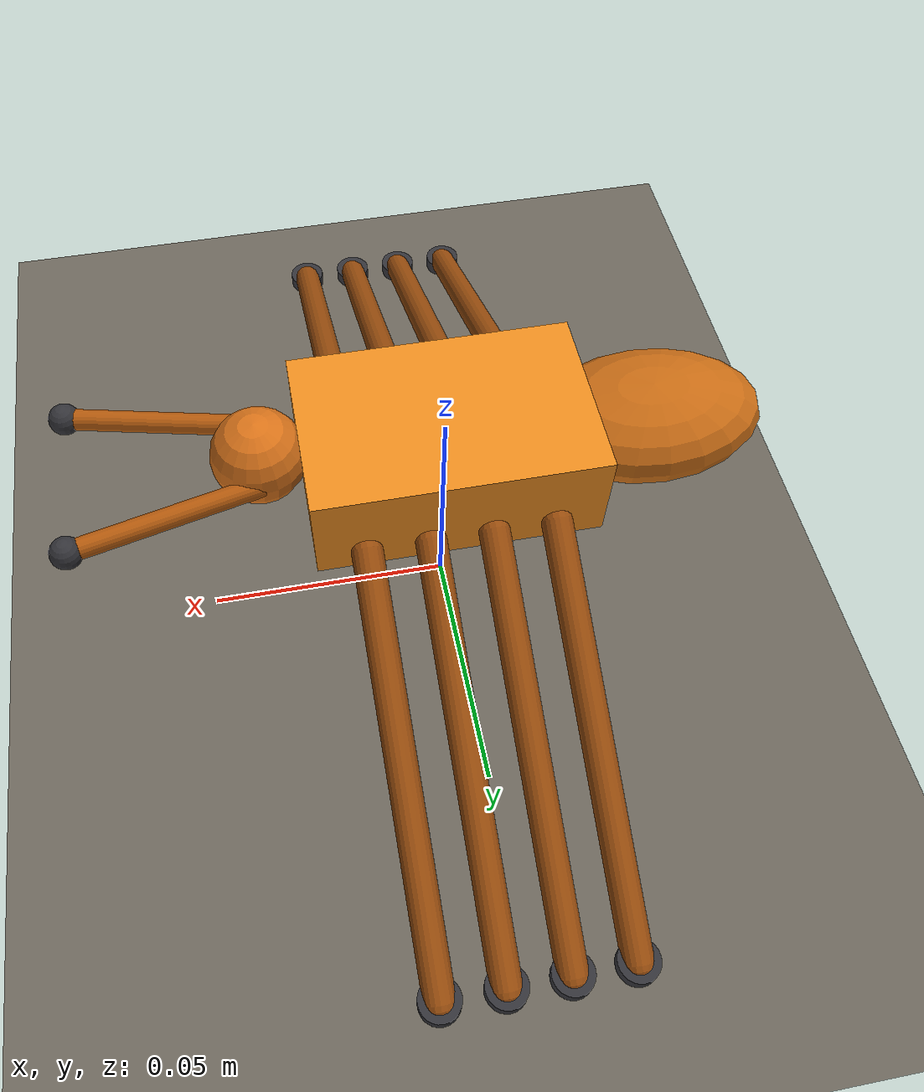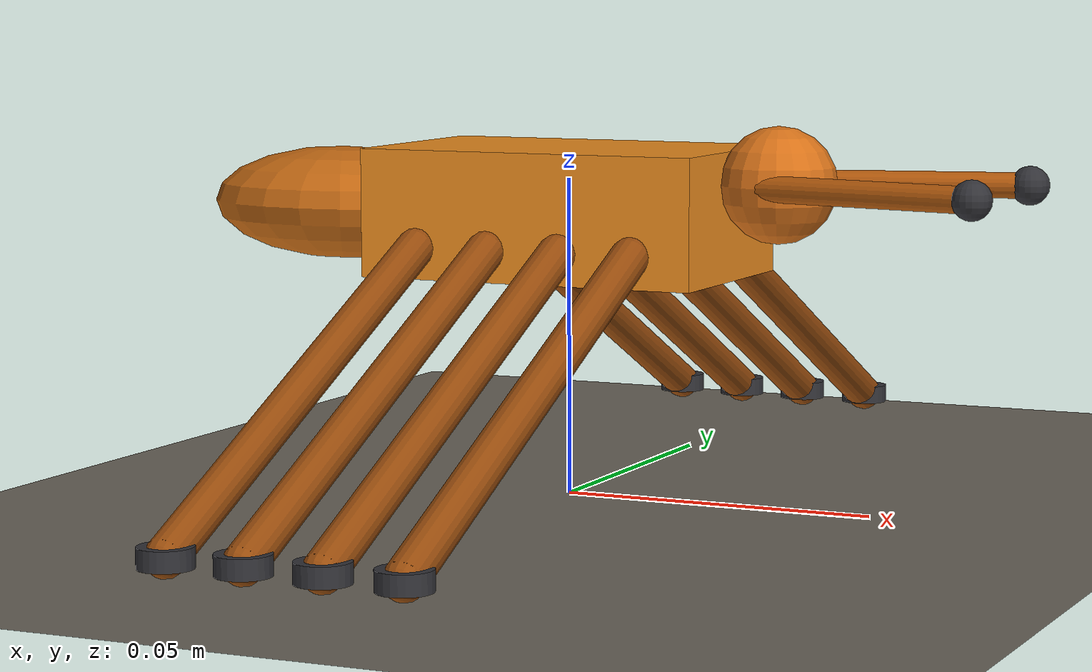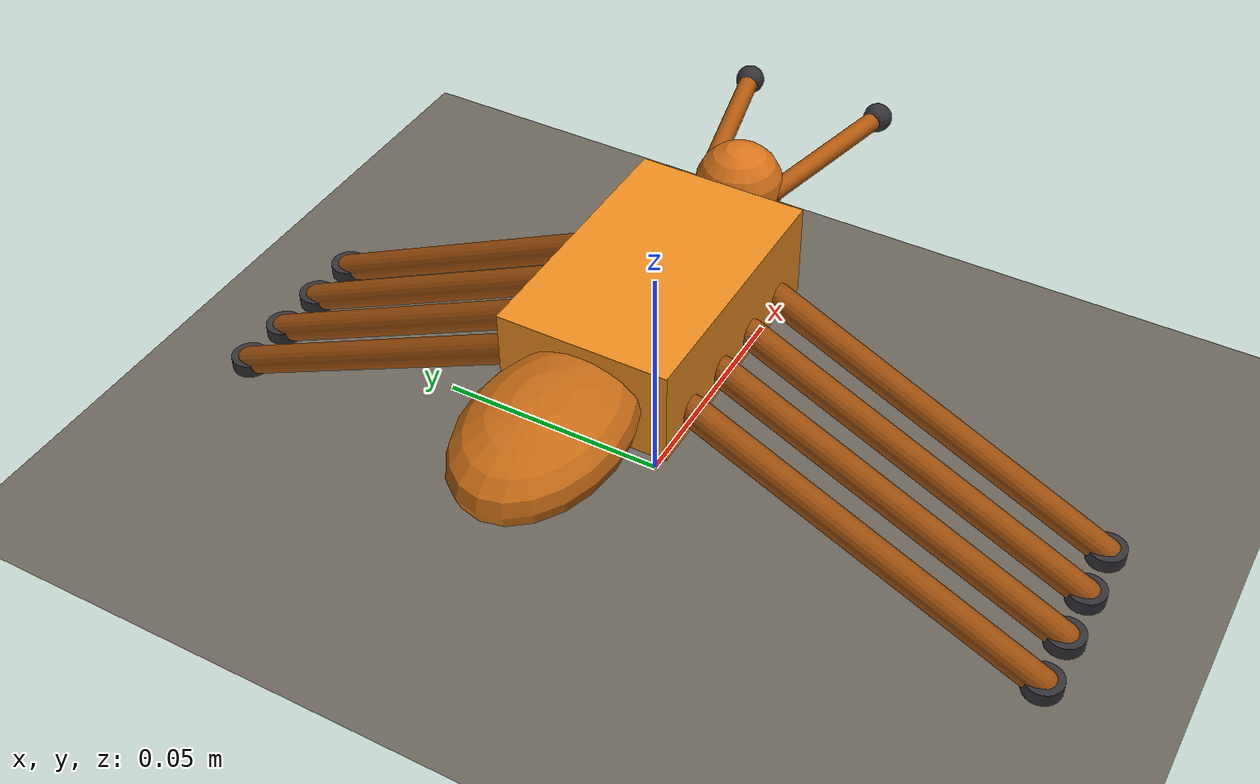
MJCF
<!-- AstraAnt Worker Ant - 8-Leg Variant
     Same body, 4 leg pairs instead of 3.
     Same 120g total mass (lighter chassis to compensate).
     Pairs at x: +0.018, +0.006, -0.006, -0.018 along thorax. -->

<mujoco model="astraant_worker_8leg">

  <compiler angle="degree" coordinate="local"/>

  <option timestep="0.001" gravity="0 0 -9.81">
    <flag contact="enable"/>
  </option>

  <default>
    <joint damping="0.001" armature="0.00001" limited="true"/>
    <geom condim="3" friction="0.8 0.005 0.001" solref="0.02 1"/>
  </default>

  <asset>
    <material name="body_orange" rgba="0.92 0.55 0.12 1"/>
    <material name="abdomen_color" rgba="0.78 0.42 0.08 1"/>
    <material name="head_color" rgba="0.85 0.45 0.10 1"/>
    <material name="leg_brown" rgba="0.60 0.30 0.05 1"/>
    <material name="foot_pad_mat" rgba="0.20 0.20 0.22 1"/>
    <material name="mandible_color" rgba="0.70 0.35 0.05 1"/>
    <material name="regolith" rgba="0.42 0.40 0.36 1"/>
  </asset>

  <worldbody>
    <light diffuse="0.9 0.9 0.85" dir="-0.2 -0.3 -1" pos="0.2 0.3 0.5"/>
    <light diffuse="0.3 0.3 0.35" dir="0.5 0.5 -0.3" pos="-0.3 -0.3 0.3"/>

    <geom name="ground" type="plane" size="0.5 0.5 0.01"
          material="regolith" friction="0.5 0.01 0.001"/>

    <body name="torso" pos="0 0 0.045">
      <freejoint name="root"/>
      <camera name="track" pos="0 -0.25 0.12" xyaxes="1 0 0 0 0.5 1" mode="track"/>

      <!-- Thorax: lighter frame to fit 8 legs in same 120g budget -->
      <geom name="thorax" type="box" size="0.0275 0.0175 0.01"
            mass="0.0512" material="body_orange"/>

      <geom name="abdomen" type="ellipsoid" size="0.0225 0.015 0.009"
            pos="-0.040 0 0" mass="0.020" material="abdomen_color"/>

      <geom name="head" type="sphere" size="0.009"
            pos="0.035 0 0.005" mass="0.008" material="head_color"/>

      <!-- 8 LEGS: 4 pairs along thorax -->
      <!-- Pair 1: x=+0.018 (front) -->
      <body name="leg_0_FL" pos="0.018 0.0175 -0.005">
        <joint name="j_leg_0" type="hinge" axis="0 -1 0" range="-30 30"/>
        <geom name="leg_0" type="capsule" fromto="0 0 0  0 0.0725 -0.035"
              size="0.003" mass="0.003" material="leg_brown"/>
        <body name="foot_0" pos="0 0.0725 -0.035">
          <geom name="foot_0_pad" type="cylinder" size="0.004 0.0015"
                mass="0.0011" material="foot_pad_mat"
                friction="5.0 0.02 0.005" condim="6" solref="0.01 1"/>
        </body>
      </body>
      <body name="leg_1_FR" pos="0.018 -0.0175 -0.005">
        <joint name="j_leg_1" type="hinge" axis="0 -1 0" range="-30 30"/>
        <geom name="leg_1" type="capsule" fromto="0 0 0  0 -0.0725 -0.035"
              size="0.003" mass="0.003" material="leg_brown"/>
        <body name="foot_1" pos="0 -0.0725 -0.035">
          <geom name="foot_1_pad" type="cylinder" size="0.004 0.0015"
                mass="0.0011" material="foot_pad_mat"
                friction="5.0 0.02 0.005" condim="6" solref="0.01 1"/>
        </body>
      </body>

      <!-- Pair 2: x=+0.006 -->
      <body name="leg_2_M1L" pos="0.006 0.0175 -0.005">
        <joint name="j_leg_2" type="hinge" axis="0 -1 0" range="-30 30"/>
        <geom name="leg_2" type="capsule" fromto="0 0 0  0 0.0725 -0.035"
              size="0.003" mass="0.003" material="leg_brown"/>
        <body name="foot_2" pos="0 0.0725 -0.035">
          <geom name="foot_2_pad" type="cylinder" size="0.004 0.0015"
                mass="0.0011" material="foot_pad_mat"
                friction="5.0 0.02 0.005" condim="6" solref="0.01 1"/>
        </body>
      </body>
      <body name="leg_3_M1R" pos="0.006 -0.0175 -0.005">
        <joint name="j_leg_3" type="hinge" axis="0 -1 0" range="-30 30"/>
        <geom name="leg_3" type="capsule" fromto="0 0 0  0 -0.0725 -0.035"
              size="0.003" mass="0.003" material="leg_brown"/>
        <body name="foot_3" pos="0 -0.0725 -0.035">
          <geom name="foot_3_pad" type="cylinder" size="0.004 0.0015"
                mass="0.0011" material="foot_pad_mat"
                friction="5.0 0.02 0.005" condim="6" solref="0.01 1"/>
        </body>
      </body>

      <!-- Pair 3: x=-0.006 -->
      <body name="leg_4_M2L" pos="-0.006 0.0175 -0.005">
        <joint name="j_leg_4" type="hinge" axis="0 -1 0" range="-30 30"/>
        <geom name="leg_4" type="capsule" fromto="0 0 0  0 0.0725 -0.035"
              size="0.003" mass="0.003" material="leg_brown"/>
        <body name="foot_4" pos="0 0.0725 -0.035">
          <geom name="foot_4_pad" type="cylinder" size="0.004 0.0015"
                mass="0.0011" material="foot_pad_mat"
                friction="5.0 0.02 0.005" condim="6" solref="0.01 1"/>
        </body>
      </body>
      <body name="leg_5_M2R" pos="-0.006 -0.0175 -0.005">
        <joint name="j_leg_5" type="hinge" axis="0 -1 0" range="-30 30"/>
        <geom name="leg_5" type="capsule" fromto="0 0 0  0 -0.0725 -0.035"
              size="0.003" mass="0.003" material="leg_brown"/>
        <body name="foot_5" pos="0 -0.0725 -0.035">
          <geom name="foot_5_pad" type="cylinder" size="0.004 0.0015"
                mass="0.0011" material="foot_pad_mat"
                friction="5.0 0.02 0.005" condim="6" solref="0.01 1"/>
        </body>
      </body>

      <!-- Pair 4: x=-0.018 (rear) -->
      <body name="leg_6_RL" pos="-0.018 0.0175 -0.005">
        <joint name="j_leg_6" type="hinge" axis="0 -1 0" range="-30 30"/>
        <geom name="leg_6" type="capsule" fromto="0 0 0  0 0.0725 -0.035"
              size="0.003" mass="0.003" material="leg_brown"/>
        <body name="foot_6" pos="0 0.0725 -0.035">
          <geom name="foot_6_pad" type="cylinder" size="0.004 0.0015"
                mass="0.0011" material="foot_pad_mat"
                friction="5.0 0.02 0.005" condim="6" solref="0.01 1"/>
        </body>
      </body>
      <body name="leg_7_RR" pos="-0.018 -0.0175 -0.005">
        <joint name="j_leg_7" type="hinge" axis="0 -1 0" range="-30 30"/>
        <geom name="leg_7" type="capsule" fromto="0 0 0  0 -0.0725 -0.035"
              size="0.003" mass="0.003" material="leg_brown"/>
        <body name="foot_7" pos="0 -0.0725 -0.035">
          <geom name="foot_7_pad" type="cylinder" size="0.004 0.0015"
                mass="0.0011" material="foot_pad_mat"
                friction="5.0 0.02 0.005" condim="6" solref="0.01 1"/>
        </body>
      </body>

      <!-- Mandibles (same as 6-leg) -->
      <body name="mandible_L" pos="0.035 0.007 0.005">
        <joint name="j_mandible_L" type="hinge" axis="0 0 1" range="-30 30"/>
        <geom name="mandible_L_arm" type="capsule" fromto="0 0 0  0.035 0.008 0"
              size="0.002" mass="0.003" material="mandible_color"/>
        <geom name="mandible_L_tip" type="sphere" size="0.003"
              pos="0.035 0.008 0" mass="0.001" material="foot_pad_mat"/>
      </body>
      <body name="mandible_R" pos="0.035 -0.007 0.005">
        <joint name="j_mandible_R" type="hinge" axis="0 0 -1" range="-30 30"/>
        <geom name="mandible_R_arm" type="capsule" fromto="0 0 0  0.035 -0.008 0"
              size="0.002" mass="0.003" material="mandible_color"/>
        <geom name="mandible_R_tip" type="sphere" size="0.003"
              pos="0.035 -0.008 0" mass="0.001" material="foot_pad_mat"/>
      </body>
    </body>
  </worldbody>

  <actuator>
    <position name="servo_leg_0" joint="j_leg_0" kp="5.0" kv="0.01"
              ctrlrange="-30 30" forcerange="-0.176 0.176"/>
    <position name="servo_leg_1" joint="j_leg_1" kp="5.0" kv="0.01"
              ctrlrange="-30 30" forcerange="-0.176 0.176"/>
    <position name="servo_leg_2" joint="j_leg_2" kp="5.0" kv="0.01"
              ctrlrange="-30 30" forcerange="-0.176 0.176"/>
    <position name="servo_leg_3" joint="j_leg_3" kp="5.0" kv="0.01"
              ctrlrange="-30 30" forcerange="-0.176 0.176"/>
    <position name="servo_leg_4" joint="j_leg_4" kp="5.0" kv="0.01"
              ctrlrange="-30 30" forcerange="-0.176 0.176"/>
    <position name="servo_leg_5" joint="j_leg_5" kp="5.0" kv="0.01"
              ctrlrange="-30 30" forcerange="-0.176 0.176"/>
    <position name="servo_leg_6" joint="j_leg_6" kp="5.0" kv="0.01"
              ctrlrange="-30 30" forcerange="-0.176 0.176"/>
    <position name="servo_leg_7" joint="j_leg_7" kp="5.0" kv="0.01"
              ctrlrange="-30 30" forcerange="-0.176 0.176"/>
    <position name="servo_mandible_L" joint="j_mandible_L" kp="3.0" kv="0.005"
              ctrlrange="-30 30" forcerange="-0.098 0.098"/>
    <position name="servo_mandible_R" joint="j_mandible_R" kp="3.0" kv="0.005"
              ctrlrange="-30 30" forcerange="-0.098 0.098"/>
  </actuator>

  <sensor>
    <framepos name="torso_pos" objtype="body" objname="torso"/>
    <framequat name="torso_quat" objtype="body" objname="torso"/>
    <framelinvel name="torso_linvel" objtype="body" objname="torso"/>
  </sensor>

</mujoco>
